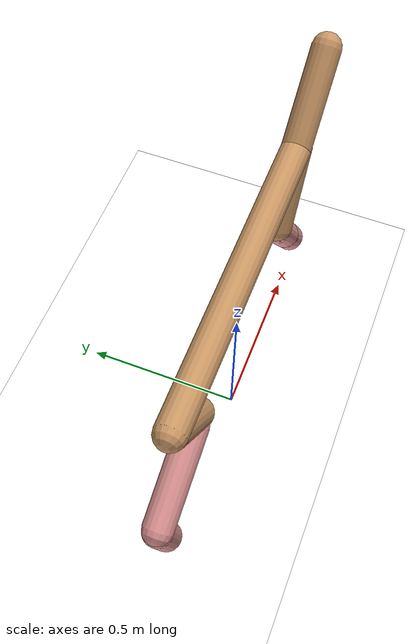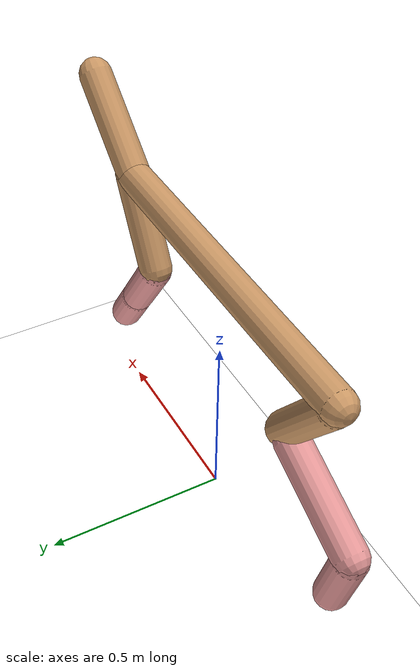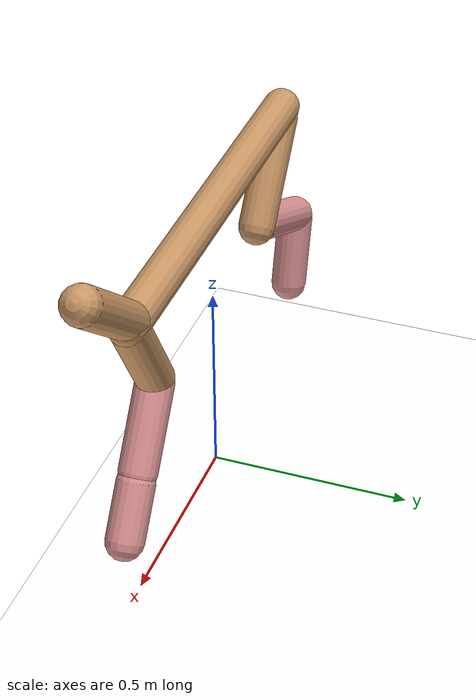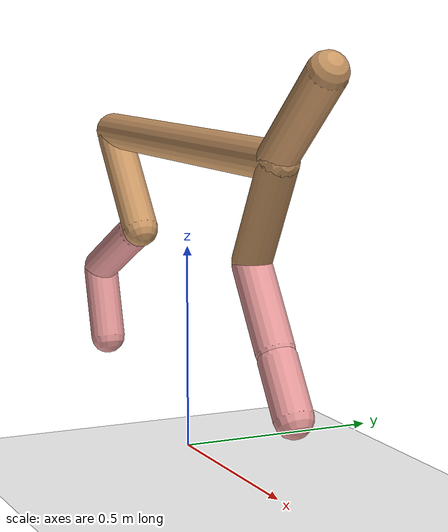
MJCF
<mujoco model="cheetah">
  <compiler angle="radian" coordinate="local" inertiafromgeom="true" settotalmass="14"/>
  <default>
    <joint armature=".1" damping=".01" limited="true" solimplimit="0 .8 .03" solreflimit=".02 1" stiffness="8"/>
    <geom conaffinity="0" condim="3" contype="1" friction="0.8 .1 .1" rgba="0.8 0.6 .4 1" solimp="0.0 0.8 0.01" solref="0.02 1"/>
    <motor ctrllimited="true" ctrlrange="-1 1"/>
  </default>
  <size nstack="300000" nuser_geom="1"/>
  <option gravity="0 0 -9.81" timestep="0.01"/>
  <worldbody>
    <geom name="ground" type="plane" conaffinity="0" pos="0 0 -0.2" size="200 200 .5" rgba="1 1 1 1"/>
    <body name="rootx_body" pos="0 0 0">
      <joint armature="0.1" axis="1 0 0" damping="0" limited="false" name="rootx" pos="0 0 0" stiffness="0" type="slide"/>
      <body name="rootz_body" pos="0 0 0">
        <joint armature="0.1" axis="0 0 1" damping="0" limited="false" name="rootz" pos="0 0 0" stiffness="0" type="slide"/>
        <body name="torso" pos="0 0 0.75">
          <joint armature="0.1" axis="0 1 0" damping="0" limited="false" name="rooty" pos="0 0 0" stiffness="0" type="hinge"/>
          <geom fromto="-.5 0 0 .5 0 0" name="torso" size="0.046" type="capsule"/>
          <geom axisangle="0 1 0 .87" name="head" pos=".6 0 .1" size="0.046 .15" type="capsule"/>
          <body name="bthigh" pos="-.5 0 0">
            <joint axis="0 1 0" damping="6" name="bthigh" pos="0 0 0" range="-.52 1.05" stiffness="240" type="hinge"/>
            <geom axisangle="0 1 0 -3.8" name="bthigh" pos=".1 0 -.13" size="0.046 .145" type="capsule"/>
            <body name="bshin" pos=".16 0 -.25">
              <joint axis="0 1 0" damping="4.5" name="bshin" pos="0 0 0" range="-.785 .785" stiffness="180" type="hinge"/>
              <geom axisangle="0 1 0 -2.03" name="bshin" pos="-.14 0 -.07" rgba="0.9 0.6 0.6 1" size="0.046 .15" type="capsule"/>
              <body name="bfoot" pos="-.28 0 -.14">
                <joint axis="0 1 0" damping="3" name="bfoot" pos="0 0 0" range="-.4 .785" stiffness="120" type="hinge"/>
                <geom axisangle="0 1 0 -.27" name="bfoot" pos=".03 0 -.097" rgba="0.9 0.6 0.6 1" size="0.046 .094" type="capsule"/>
              </body>
            </body>
          </body>
          <body name="fthigh" pos=".5 0 0">
            <joint axis="0 1 0" damping="4.5" name="fthigh" pos="0 0 0" range="-1.5 0.8" stiffness="180" type="hinge"/>
            <geom axisangle="0 1 0 .52" name="fthigh" pos="-.07 0 -.12" size="0.046 .133" type="capsule"/>
            <body name="fshin" pos="-.14 0 -.24">
              <joint axis="0 1 0" damping="3" name="fshin" pos="0 0 0" range="-1.2 1.1" stiffness="120" type="hinge"/>
              <geom axisangle="0 1 0 -.6" name="fshin" pos=".065 0 -.09" rgba="0.9 0.6 0.6 1" size="0.046 .106" type="capsule"/>
              <body name="ffoot" pos=".13 0 -.18">
                <joint axis="0 1 0" damping="1.5" name="ffoot" pos="0 0 0" range="-3.1 -0.3" stiffness="60" type="hinge"/>
                <geom axisangle="0 1 0 -.6" name="ffoot" pos=".045 0 -.07" rgba="0.9 0.6 0.6 1" size="0.046 .07" type="capsule"/>
              </body>
            </body>
          </body>
        </body>
      </body>
    </body>
  </worldbody>
  <actuator>
    <motor gear="120" joint="bthigh" name="bthigh"/>
    <motor gear="90" joint="bshin" name="bshin"/>
    <motor gear="60" joint="bfoot" name="bfoot"/>
    <motor gear="120" joint="fthigh" name="fthigh"/>
    <motor gear="60" joint="fshin" name="fshin"/>
    <motor gear="30" joint="ffoot" name="ffoot"/>
  </actuator>
</mujoco>
